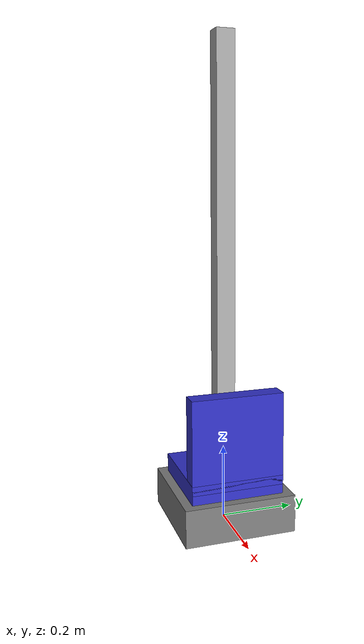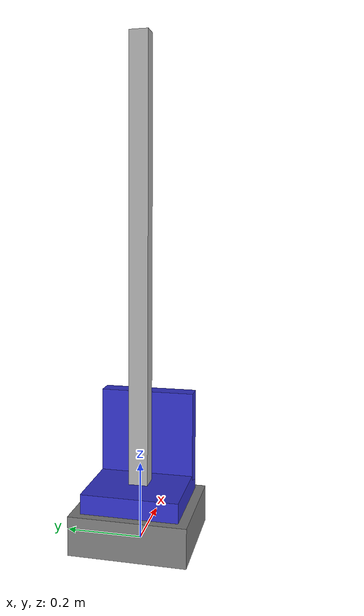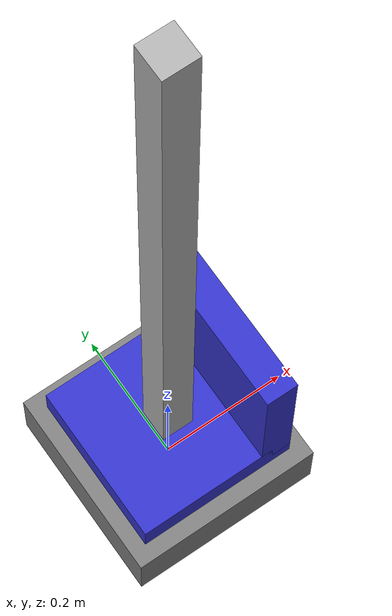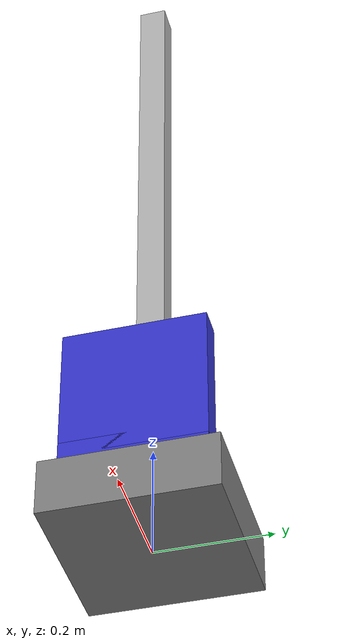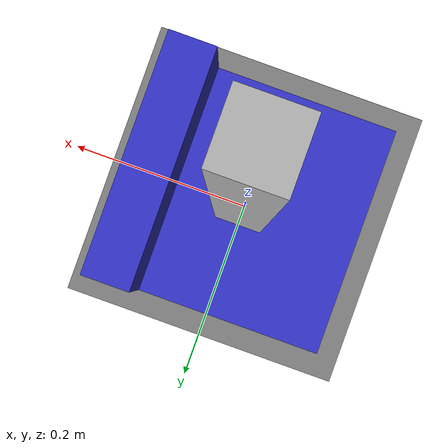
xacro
<?xml version="1.0"?>
<robot xmlns:xacro="http://www.ros.org/wiki/xacro" name="vertical_lift_kit">

  <!-- Xacro Properties -->
  <xacro:property name="PI" value="3.14159"/>

  <!-- Base dimensions -->
  <xacro:property name="base_width" value="0.3"/>
  <xacro:property name="base_length" value="0.3"/>
  <xacro:property name="base_height" value="0.1"/>
  <xacro:property name="base_mass" value="5.0"/>

  <!-- Rail dimensions -->
  <xacro:property name="rail_width" value="0.05"/>
  <xacro:property name="rail_length" value="0.05"/>
  <xacro:property name="rail_height" value="1.2"/>
  <xacro:property name="rail_mass" value="2.0"/>

  <!-- Platform dimensions -->
  <xacro:property name="platform_width" value="0.25"/>
  <xacro:property name="platform_length" value="0.25"/>
  <xacro:property name="platform_height" value="0.05"/>
  <xacro:property name="platform_mass" value="1.0"/>

  <!-- Lift joint properties -->
  <xacro:property name="lift_min" value="0.0"/>
  <xacro:property name="lift_max" value="1.0"/>
  <xacro:property name="lift_effort" value="1000.0"/>
  <xacro:property name="lift_velocity" value="0.5"/>
  <xacro:property name="lift_damping" value="0.1"/>
  <xacro:property name="lift_friction" value="0.1"/>

  <!-- Material definitions -->
  <material name="gray">
    <color rgba="0.5 0.5 0.5 1"/>
  </material>

  <material name="steel">
    <color rgba="0.7 0.7 0.7 1"/>
  </material>

  <material name="blue">
    <color rgba="0.2 0.2 0.8 1"/>
  </material>

  <!-- Macro for calculating box inertia -->
  <xacro:macro name="box_inertia" params="mass x y z">
    <inertial>
      <mass value="${mass}"/>
      <inertia ixx="${mass * (y*y + z*z) / 12.0}" ixy="0.0" ixz="0.0"
               iyy="${mass * (x*x + z*z) / 12.0}" iyz="0.0"
               izz="${mass * (x*x + y*y) / 12.0}"/>
    </inertial>
  </xacro:macro>

  <!-- Macro for creating a box link -->
  <xacro:macro name="box_link" params="name mass x y z origin_x origin_y origin_z origin_r origin_p origin_yaw material_name">
    <link name="${name}">
      <visual>
        <origin xyz="${origin_x} ${origin_y} ${origin_z}" rpy="${origin_r} ${origin_p} ${origin_yaw}"/>
        <geometry>
          <box size="${x} ${y} ${z}"/>
        </geometry>
        <material name="${material_name}"/>
      </visual>
      <collision>
        <origin xyz="${origin_x} ${origin_y} ${origin_z}" rpy="${origin_r} ${origin_p} ${origin_yaw}"/>
        <geometry>
          <box size="${x} ${y} ${z}"/>
        </geometry>
      </collision>
      <inertial>
        <origin xyz="${origin_x} ${origin_y} ${origin_z}" rpy="${origin_r} ${origin_p} ${origin_yaw}"/>
        <mass value="${mass}"/>
        <inertia ixx="${mass * (y*y + z*z) / 12.0}" ixy="0.0" ixz="0.0"
                 iyy="${mass * (x*x + z*z) / 12.0}" iyz="0.0"
                 izz="${mass * (x*x + y*y) / 12.0}"/>
      </inertial>
    </link>
  </xacro:macro>

  <!-- Base Link -->
  <xacro:box_link name="base_link"
                  mass="${base_mass}"
                  x="${base_width}" y="${base_length}" z="${base_height}"
                  origin_x="0" origin_y="0" origin_z="${base_height/2}"
                  origin_r="0" origin_p="0" origin_yaw="0"
                  material_name="gray"/>

  <!-- Lift Rail Link -->
  <xacro:box_link name="lift_rail"
                  mass="${rail_mass}"
                  x="${rail_width}" y="${rail_length}" z="${rail_height}"
                  origin_x="0" origin_y="0" origin_z="${rail_height/2}"
                  origin_r="0" origin_p="0" origin_yaw="0"
                  material_name="steel"/>

  <!-- Lift Platform Link - L-shaped -->
  <link name="lift_platform">
    <!-- Horizontal part of L -->
    <visual>
      <origin xyz="0 0 ${platform_height/2}" rpy="0 0 0"/>
      <geometry>
        <box size="${platform_width} ${platform_length} ${platform_height}"/>
      </geometry>
      <material name="blue"/>
    </visual>
    <collision>
      <origin xyz="0 0 ${platform_height/2}" rpy="0 0 0"/>
      <geometry>
        <box size="${platform_width} ${platform_length} ${platform_height}"/>
      </geometry>
    </collision>

    <!-- Vertical part of L -->
    <visual>
      <origin xyz="${platform_width/2 - platform_height/2} 0 ${platform_height/2 + platform_length/2}" rpy="0 0 0"/>
      <geometry>
        <box size="${platform_height} ${platform_width} ${platform_length}"/>
      </geometry>
      <material name="blue"/>
    </visual>
    <collision>
      <origin xyz="${platform_width/2 - platform_height/2} 0 ${platform_height/2 + platform_length/2}" rpy="0 0 0"/>
      <geometry>
        <box size="${platform_height} ${platform_width} ${platform_length}"/>
      </geometry>
    </collision>

    <!-- Combined inertial properties for L-shaped platform -->
    <inertial>
      <origin xyz="${(platform_width/2 - platform_height/2) * platform_height / (2 * platform_height)} 0 ${(platform_height/2 + (platform_height/2 + platform_length/2)) / 2}" rpy="0 0 0"/>
      <mass value="${platform_mass}"/>
      <!-- Approximate inertia for L-shaped body -->
      <inertia ixx="${platform_mass * (platform_width*platform_width + platform_length*platform_length) / 12.0}"
               ixy="0.0" ixz="0.0"
               iyy="${platform_mass * (platform_width*platform_width + platform_length*platform_length) / 12.0}"
               iyz="0.0"
               izz="${platform_mass * (platform_width*platform_width + platform_length*platform_length) / 12.0}"/>
    </inertial>
  </link>

  <!-- Base to Rail Joint (Fixed) -->
  <joint name="base_to_rail" type="fixed">
    <parent link="base_link"/>
    <child link="lift_rail"/>
    <origin xyz="0 0 ${base_height}" rpy="0 0 0"/>
  </joint>

  <!-- Lift Joint (Prismatic) -->
  <joint name="lift_joint" type="prismatic">
    <parent link="lift_rail"/>
    <child link="lift_platform"/>
    <origin xyz="0 0 ${lift_min}" rpy="0 0 0"/>
    <axis xyz="0 0 1"/>
    <limit lower="${lift_min}" upper="${lift_max}" effort="${lift_effort}" velocity="${lift_velocity}"/>
    <dynamics damping="${lift_damping}" friction="${lift_friction}"/>
  </joint>

  <!-- Gazebo ros2_control plugin for Ignition Gazebo 6 -->
  <gazebo>
    <plugin filename="ign_ros2_control-system" name="ign_ros2_control::IgnitionROS2ControlPlugin">
      <parameters>$(find vertical_lift_kit)/config/controllers.yaml</parameters>
    </plugin>
  </gazebo>

  <!-- Xacro argument for hardware type -->
  <xacro:arg name="use_mock_hardware" default="false"/>
  <xacro:property name="use_mock_hardware" value="$(arg use_mock_hardware)"/>

  <!-- ros2_control -->
  <ros2_control name="vertical_lift_kit_control" type="system">
    <hardware>
      <xacro:if value="${use_mock_hardware}">
        <plugin>mock_components/GenericSystem</plugin>
        <param name="mock_sensor_commands">false</param>
        <param name="state_following_offset">0.0</param>
      </xacro:if>
      <xacro:unless value="${use_mock_hardware}">
        <plugin>ign_ros2_control/IgnitionSystem</plugin>
      </xacro:unless>
    </hardware>

    <joint name="lift_joint">
      <command_interface name="position">
        <param name="min">${lift_min}</param>
        <param name="max">${lift_max}</param>
      </command_interface>
      <state_interface name="position"/>
      <state_interface name="velocity"/>
    </joint>
  </ros2_control>

  <!-- Gazebo Materials for gz-sim -->
  <gazebo reference="base_link">
    <visual>
      <material>
        <ambient>0.5 0.5 0.5 1</ambient>
        <diffuse>0.5 0.5 0.5 1</diffuse>
        <specular>0.1 0.1 0.1 1</specular>
      </material>
    </visual>
  </gazebo>

  <gazebo reference="lift_rail">
    <visual>
      <material>
        <ambient>0.7 0.7 0.7 1</ambient>
        <diffuse>0.7 0.7 0.7 1</diffuse>
        <specular>0.3 0.3 0.3 1</specular>
      </material>
    </visual>
  </gazebo>

  <gazebo reference="lift_platform">
    <visual>
      <material>
        <ambient>0.2 0.2 0.8 1</ambient>
        <diffuse>0.2 0.2 0.8 1</diffuse>
        <specular>0.1 0.1 0.3 1</specular>
      </material>
    </visual>
  </gazebo>

</robot>
